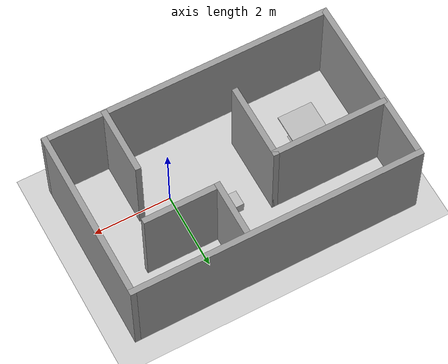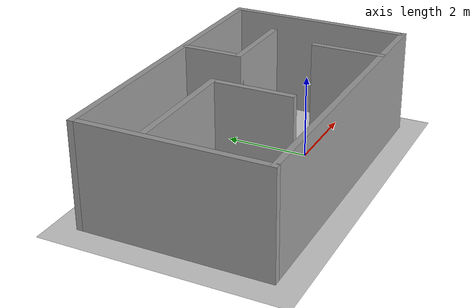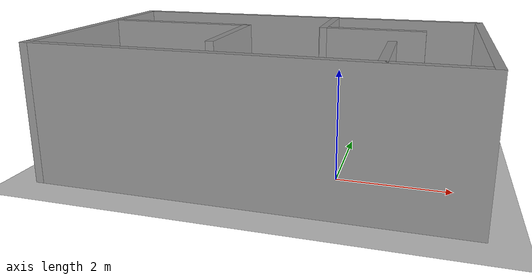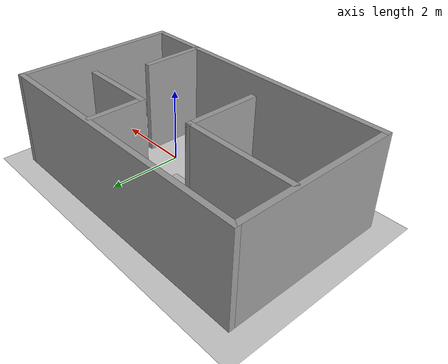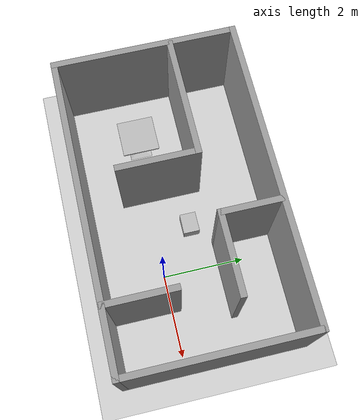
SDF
<sdf version="1.7">
 <world name="default">
  <light name="sun" type="directional">
   <pose>0 0 10 0 -0 0</pose>
   <diffuse>0.8 0.8 0.8 1</diffuse>
   <specular>0.2 0.2 0.2 1</specular>
   <attenuation>
    <range>1000</range>
    <constant>0.9</constant>
    <linear>0.01</linear>
    <quadratic>0.001</quadratic>
   </attenuation>
   <direction>-0.5 0.1 -0.9</direction>
   <spot><inner_angle>0</inner_angle><outer_angle>0</outer_angle><falloff>0</falloff></spot>
  </light>
  <model name="ground_plane">
   <static>1</static>
   <link name="link">
    <collision name="collision">
     <geometry><plane><normal>0 0 1</normal><size>100 100</size></plane></geometry>
     <surface><friction><ode><mu>100</mu><mu2>50</mu2></ode></friction></surface>
    </collision>
    <visual name="visual">
     <cast_shadows>0</cast_shadows>
     <geometry><plane><normal>0 0 1</normal><size>100 100</size></plane></geometry>
     <material>
      <script><uri>file://media/materials/scripts/gazebo.material</uri><name>Gazebo/Grey</name></script>
     </material>
    </visual>
   </link>
  </model>
  <gravity>0 0 -9.8</gravity>
  <magnetic_field>6e-06 2.3e-05 -4.2e-05</magnetic_field>
  <atmosphere type="adiabatic"/>
  <physics type="ode">
   <max_step_size>0.001</max_step_size>
   <real_time_factor>1</real_time_factor>
   <real_time_update_rate>1000</real_time_update_rate>
  </physics>
  <scene><ambient>0.4 0.4 0.4 1</ambient><background>0.7 0.7 0.7 1</background><shadows>1</shadows></scene>
  <audio><device>default</device></audio>
  <spherical_coordinates>
   <surface_model>EARTH_WGS84</surface_model>
   <latitude_deg>0</latitude_deg>
   <longitude_deg>0</longitude_deg>
   <elevation>0</elevation>
   <heading_deg>0</heading_deg>
  </spherical_coordinates>
  <model name="room">
   <pose>-1.315 0.695 0 0 -0 0</pose>
   <link name="Wall_13">
    <collision name="Wall_13_Collision">
     <geometry><box><size>4.5 0.15 2.5</size></box></geometry>
     <pose>0 0 1.25 0 -0 0</pose>
    </collision>
    <visual name="Wall_13_Visual">
     <pose>0 0 1.25 0 -0 0</pose>
     <geometry><box><size>4.5 0.15 2.5</size></box></geometry>
     <material>
      <script><uri>file://media/materials/scripts/gazebo.material</uri><name>Gazebo/Grey</name></script>
      <ambient>1 1 1 1</ambient>
     </material>
     <meta><layer>0</layer></meta>
    </visual>
    <pose>3.675 0 0 0 -0 -1.5708</pose>
   </link>
   <link name="Wall_14">
    <collision name="Wall_14_Collision">
     <geometry><box><size>7.5 0.15 2.5</size></box></geometry>
     <pose>0 0 1.25 0 -0 0</pose>
    </collision>
    <visual name="Wall_14_Visual">
     <pose>0 0 1.25 0 -0 0</pose>
     <geometry><box><size>7.5 0.15 2.5</size></box></geometry>
     <material>
      <script><uri>file://media/materials/scripts/gazebo.material</uri><name>Gazebo/Grey</name></script>
      <ambient>1 1 1 1</ambient>
     </material>
     <meta><layer>0</layer></meta>
    </visual>
    <pose>-0 -2.175 0 0 -0 3.14159</pose>
   </link>
   <link name="Wall_16">
    <collision name="Wall_16_Collision">
     <geometry><box><size>4.5 0.15 2.5</size></box></geometry>
     <pose>0 0 1.25 0 -0 0</pose>
    </collision>
    <visual name="Wall_16_Visual">
     <pose>0 0 1.25 0 -0 0</pose>
     <geometry><box><size>4.5 0.15 2.5</size></box></geometry>
     <material>
      <script><uri>file://media/materials/scripts/gazebo.material</uri><name>Gazebo/Grey</name></script>
      <ambient>1 1 1 1</ambient>
     </material>
     <meta><layer>0</layer></meta>
    </visual>
    <pose>-3.675 0 0 0 -0 -1.5708</pose>
   </link>
   <link name="Wall_22">
    <collision name="Wall_22_Collision">
     <geometry><box><size>3 0.15 2.5</size></box></geometry>
     <pose>0 0 1.25 0 -0 0</pose>
    </collision>
    <visual name="Wall_22_Visual">
     <pose>0 0 1.25 0 -0 0</pose>
     <geometry><box><size>3 0.15 2.5</size></box></geometry>
     <material>
      <script><uri>file://media/materials/scripts/gazebo.material</uri><name>Gazebo/Grey</name></script>
      <ambient>1 1 1 1</ambient>
     </material>
     <meta><layer>0</layer></meta>
    </visual>
    <pose>-2.2 0.615 0 0 -0 0</pose>
   </link>
   <link name="Wall_23">
    <collision name="Wall_23_Collision">
     <geometry><box><size>2 0.15 2.5</size></box></geometry>
     <pose>0 0 1.25 0 -0 0</pose>
    </collision>
    <visual name="Wall_23_Visual">
     <pose>0 0 1.25 0 -0 0</pose>
     <geometry><box><size>2 0.15 2.5</size></box></geometry>
     <material>
      <script><uri>file://media/materials/scripts/gazebo.material</uri><name>Gazebo/Grey</name></script>
      <ambient>1 1 1 1</ambient>
     </material>
     <meta><layer>0</layer></meta>
    </visual>
    <pose>-0.775 -0.31 0 0 -0 -1.5708</pose>
   </link>
   <link name="Wall_29">
    <collision name="Wall_29_Collision">
     <geometry><box><size>1.5 0.15 2.5</size></box></geometry>
     <pose>0 0 1.25 0 -0 0</pose>
    </collision>
    <visual name="Wall_29_Visual">
     <pose>0 0 1.25 0 -0 0</pose>
     <geometry><box><size>1.5 0.15 2.5</size></box></geometry>
     <material>
      <script><uri>file://media/materials/scripts/gazebo.material</uri><name>Gazebo/Grey</name></script>
      <ambient>1 1 1 1</ambient>
     </material>
     <meta><layer>0</layer></meta>
    </visual>
    <pose>0.755 1.42 0 0 -0 -1.5708</pose>
   </link>
   <link name="Wall_30">
    <collision name="Wall_30_Collision">
     <geometry><box><size>2 0.15 2.5</size></box></geometry>
     <pose>0 0 1.25 0 -0 0</pose>
    </collision>
    <visual name="Wall_30_Visual">
     <pose>0 0 1.25 0 -0 0</pose>
     <geometry><box><size>2 0.15 2.5</size></box></geometry>
     <material>
      <script><uri>file://media/materials/scripts/gazebo.material</uri><name>Gazebo/Grey</name></script>
      <ambient>1 1 1 1</ambient>
     </material>
     <meta><layer>0</layer></meta>
    </visual>
    <pose>1.68 0.745 0 0 -0 0</pose>
   </link>
   <link name="Wall_35">
    <collision name="Wall_35_Collision">
     <geometry><box><size>1.75 0.15 2.5</size></box></geometry>
     <pose>0 0 1.25 0 -0 0</pose>
    </collision>
    <visual name="Wall_35_Visual">
     <pose>0 0 1.25 0 -0 0</pose>
     <geometry><box><size>1.75 0.15 2.5</size></box></geometry>
     <material>
      <script><uri>file://media/materials/scripts/gazebo.material</uri><name>Gazebo/Grey</name></script>
      <ambient>1 1 1 1</ambient>
     </material>
     <meta><layer>0</layer></meta>
    </visual>
    <pose>2.155 -1.355 0 0 -0 1.5708</pose>
   </link>
   <link name="Wall_6">
    <collision name="Wall_6_Collision">
     <geometry><box><size>7.5 0.15 2.5</size></box></geometry>
     <pose>0 0 1.25 0 -0 0</pose>
    </collision>
    <visual name="Wall_6_Visual">
     <pose>0 0 1.25 0 -0 0</pose>
     <geometry><box><size>7.5 0.15 2.5</size></box></geometry>
     <material>
      <script><uri>file://media/materials/scripts/gazebo.material</uri><name>Gazebo/Grey</name></script>
      <ambient>1 1 1 1</ambient>
     </material>
     <meta><layer>0</layer></meta>
    </visual>
    <pose>-0 2.175 0 0 -0 3.14159</pose>
   </link>
   <static>1</static>
  </model>
  <model name="cafe_table">
   <static>1</static>
   <link name="link">
    <collision name="surface">
     <pose>0 0 0.755 0 -0 0</pose>
     <geometry><box><size>0.913 0.913 0.04</size></box></geometry>
    </collision>
    <collision name="column">
     <pose>0 0 0.37 0 -0 0</pose>
     <geometry><box><size>0.042 0.042 0.74</size></box></geometry>
    </collision>
    <collision name="base">
     <pose>0 0 0.02 0 -0 0</pose>
     <geometry><box><size>0.56 0.56 0.04</size></box></geometry>
    </collision>
    <visual name="visual">
     <geometry><mesh><uri>model://cafe_table/meshes/cafe_table.dae</uri></mesh></geometry>
    </visual>
   </link>
   <pose>-3.56923 0.131653 0 0 -0 0</pose>
  </model>
  <model name="cardboard_box">
   <pose>-1.15377 0.914085 0.149 0 -0 0</pose>
   <link name="link">
    <inertial>
     <mass>2</mass>
     <inertia>
      <ixx>0.0416667</ixx>
      <ixy>0</ixy>
      <ixz>0</ixz>
      <iyy>0.0566667</iyy>
      <iyz>0</iyz>
      <izz>0.0683333</izz>
     </inertia>
    </inertial>
    <collision name="collision">
     <geometry><box><size>0.5 0.4 0.3</size></box></geometry>
     <surface>
      <friction><ode><mu>1</mu><mu2>1</mu2></ode></friction>
      <contact><ode><kp>1e+07</kp><kd>1</kd><min_depth>0.001</min_depth><max_vel>0.1</max_vel></ode></contact>
     </surface>
    </collision>
    <visual name="visual">
     <pose>0 0 -0.15 0 -0 0</pose>
     <geometry>
      <mesh><uri>model://cardboard_box/meshes/cardboard_box.dae</uri><scale>1.25932 1.00745 0.755591</scale></mesh>
     </geometry>
    </visual>
   </link>
  </model>
 </world>
</sdf>
